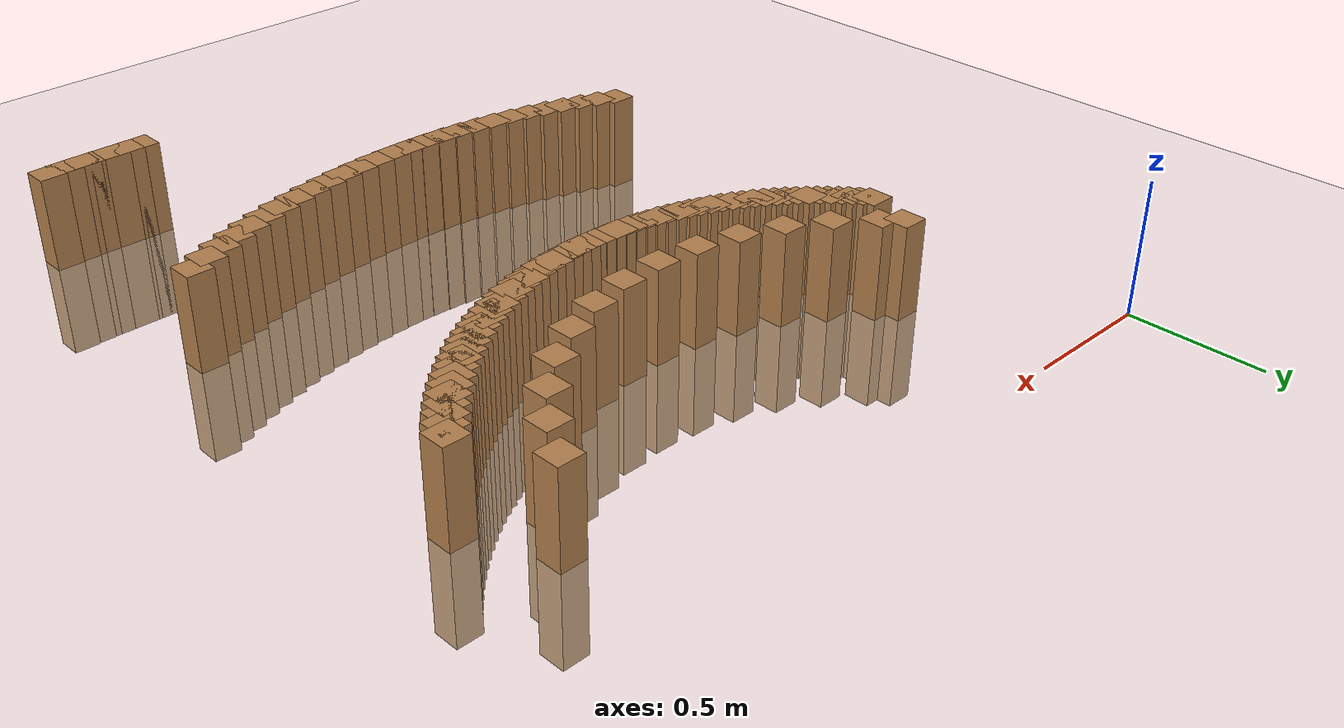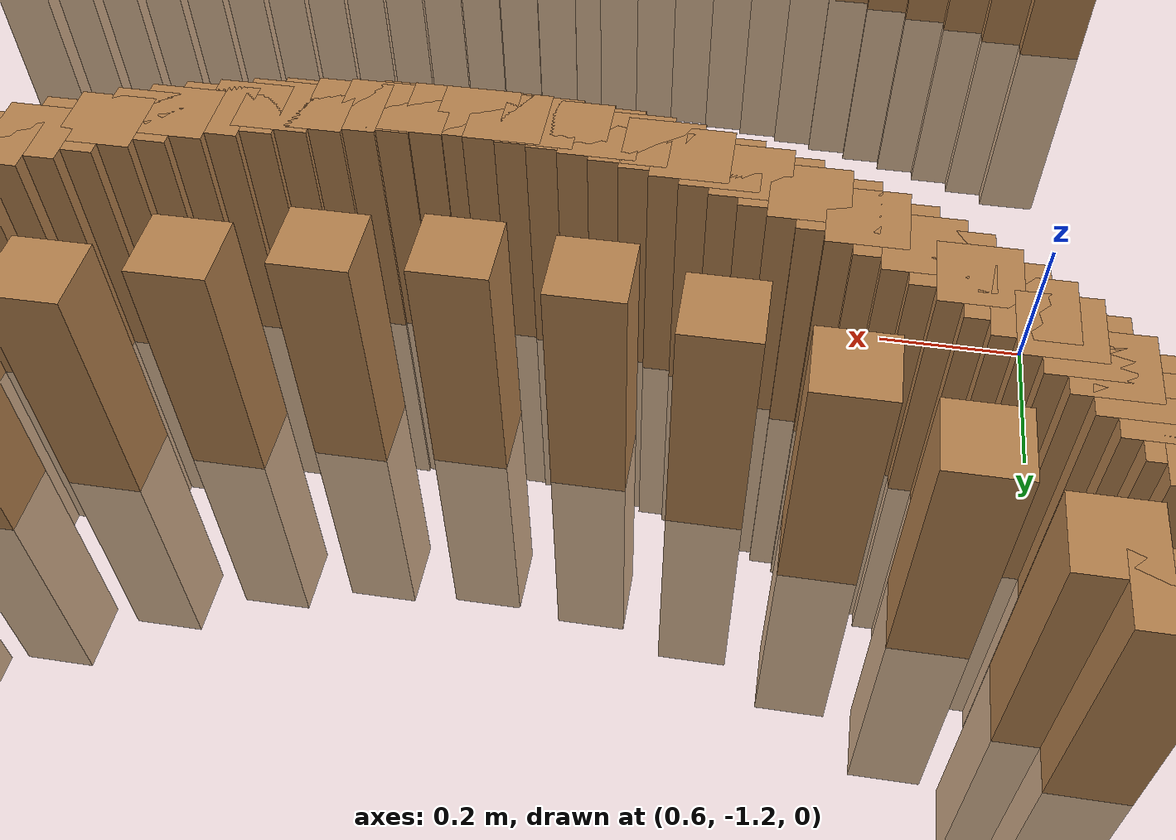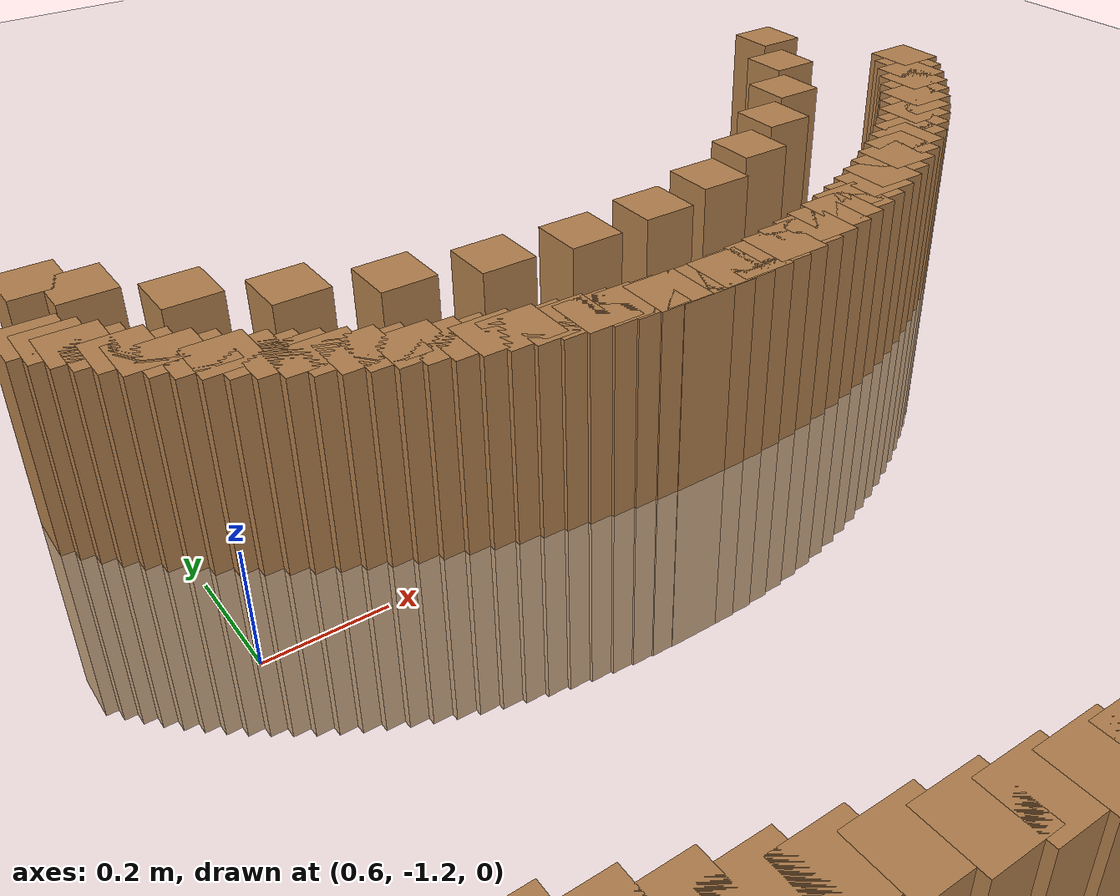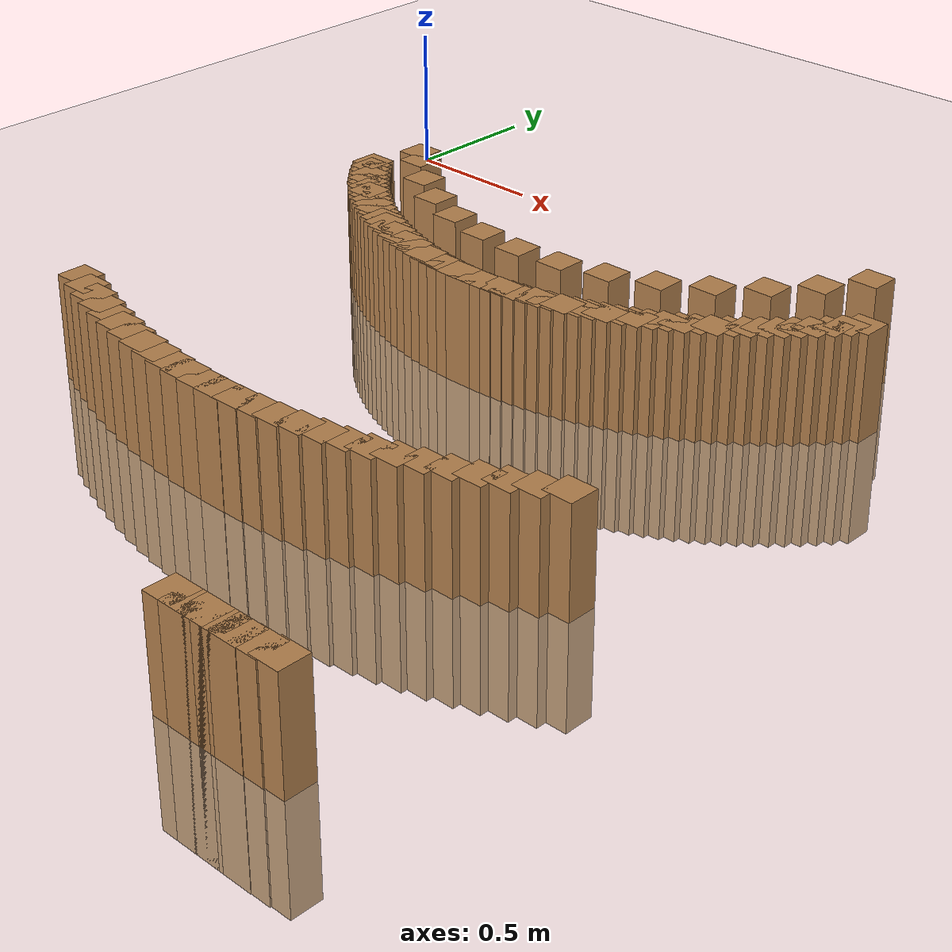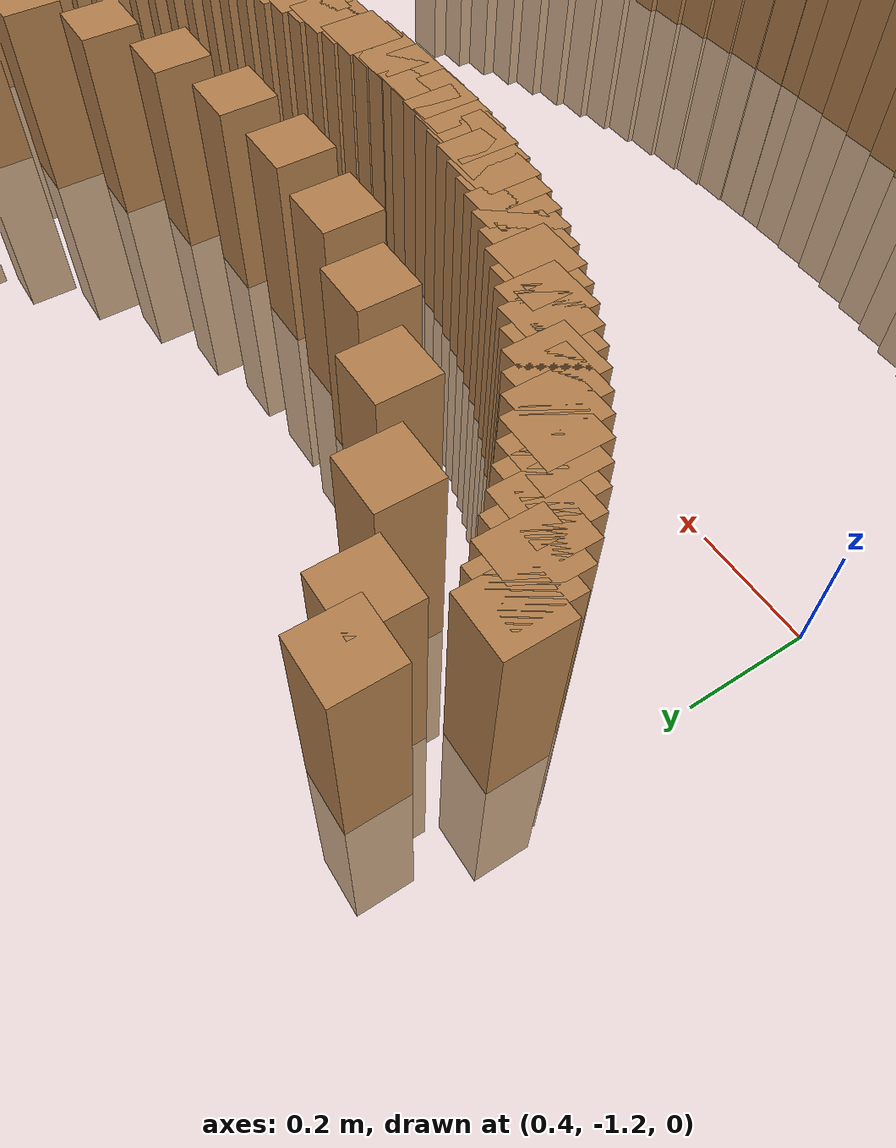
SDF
<sdf version="1.6">
 <world name="default">
  <model name="ground_plane">
   <static>1</static>
   <link name="link">
    <collision name="collision">
     <geometry><plane><normal>0 0 1</normal><size>100 100</size></plane></geometry>
     <surface><friction><ode><mu>100</mu><mu2>50</mu2></ode></friction></surface>
    </collision>
    <visual name="visual">
     <cast_shadows>0</cast_shadows>
     <geometry><plane><normal>0 0 1</normal><size>100 100</size></plane></geometry>
     <material>
      <script><uri>file://media/materials/scripts/gazebo.material</uri><name>Gazebo/Grey</name></script>
     </material>
    </visual>
   </link>
  </model>
  <model name="track">
   <link name="inner_234">
    <pose>2.426794 -1.914573 0.000000 0 -0 0</pose>
    <collision name="collision"><geometry><box><size>0.1 0.1 0.7</size></box></geometry></collision>
    <visual name="visual">
     <geometry><box><size>0.1 0.1 0.7</size></box></geometry>
     <material>
      <script><uri>file://media/materials/scripts/gazebo.material</uri><name>Gazebo/Wood</name></script>
     </material>
    </visual>
   </link>
   <link name="inner_235">
    <pose>2.356233 -1.950052 0.000000 0 -0 0</pose>
    <collision name="collision"><geometry><box><size>0.1 0.1 0.7</size></box></geometry></collision>
    <visual name="visual">
     <geometry><box><size>0.1 0.1 0.7</size></box></geometry>
     <material>
      <script><uri>file://media/materials/scripts/gazebo.material</uri><name>Gazebo/Wood</name></script>
     </material>
    </visual>
   </link>
   <link name="inner_236">
    <pose>2.284729 -1.982970 0.000000 0 -0 0</pose>
    <collision name="collision"><geometry><box><size>0.1 0.1 0.7</size></box></geometry></collision>
    <visual name="visual">
     <geometry><box><size>0.1 0.1 0.7</size></box></geometry>
     <material>
      <script><uri>file://media/materials/scripts/gazebo.material</uri><name>Gazebo/Wood</name></script>
     </material>
    </visual>
   </link>
   <link name="inner_237">
    <pose>2.212373 -2.013301 0.000000 0 -0 0</pose>
    <collision name="collision"><geometry><box><size>0.1 0.1 0.7</size></box></geometry></collision>
    <visual name="visual">
     <geometry><box><size>0.1 0.1 0.7</size></box></geometry>
     <material>
      <script><uri>file://media/materials/scripts/gazebo.material</uri><name>Gazebo/Wood</name></script>
     </material>
    </visual>
   </link>
   <link name="inner_238">
    <pose>2.139259 -2.041028 0.000000 0 -0 0</pose>
    <collision name="collision"><geometry><box><size>0.1 0.1 0.7</size></box></geometry></collision>
    <visual name="visual">
     <geometry><box><size>0.1 0.1 0.7</size></box></geometry>
     <material>
      <script><uri>file://media/materials/scripts/gazebo.material</uri><name>Gazebo/Wood</name></script>
     </material>
    </visual>
   </link>
   <link name="inner_239">
    <pose>2.065481 -2.066134 0.000000 0 -0 0</pose>
    <collision name="collision"><geometry><box><size>0.1 0.1 0.7</size></box></geometry></collision>
    <visual name="visual">
     <geometry><box><size>0.1 0.1 0.7</size></box></geometry>
     <material>
      <script><uri>file://media/materials/scripts/gazebo.material</uri><name>Gazebo/Wood</name></script>
     </material>
    </visual>
   </link>
   <link name="inner_240">
    <pose>1.991131 -2.088606 0.000000 0 -0 0</pose>
    <collision name="collision"><geometry><box><size>0.1 0.1 0.7</size></box></geometry></collision>
    <visual name="visual">
     <geometry><box><size>0.1 0.1 0.7</size></box></geometry>
     <material>
      <script><uri>file://media/materials/scripts/gazebo.material</uri><name>Gazebo/Wood</name></script>
     </material>
    </visual>
   </link>
   <link name="inner_241">
    <pose>1.916303 -2.108435 0.000000 0 -0 0</pose>
    <collision name="collision"><geometry><box><size>0.1 0.1 0.7</size></box></geometry></collision>
    <visual name="visual">
     <geometry><box><size>0.1 0.1 0.7</size></box></geometry>
     <material>
      <script><uri>file://media/materials/scripts/gazebo.material</uri><name>Gazebo/Wood</name></script>
     </material>
    </visual>
   </link>
   <link name="inner_242">
    <pose>1.841090 -2.125613 0.000000 0 -0 0</pose>
    <collision name="collision"><geometry><box><size>0.1 0.1 0.7</size></box></geometry></collision>
    <visual name="visual">
     <geometry><box><size>0.1 0.1 0.7</size></box></geometry>
     <material>
      <script><uri>file://media/materials/scripts/gazebo.material</uri><name>Gazebo/Wood</name></script>
     </material>
    </visual>
   </link>
   <link name="inner_243">
    <pose>1.765587 -2.140138 0.000000 0 -0 0</pose>
    <collision name="collision"><geometry><box><size>0.1 0.1 0.7</size></box></geometry></collision>
    <visual name="visual">
     <geometry><box><size>0.1 0.1 0.7</size></box></geometry>
     <material>
      <script><uri>file://media/materials/scripts/gazebo.material</uri><name>Gazebo/Wood</name></script>
     </material>
    </visual>
   </link>
   <link name="inner_244">
    <pose>1.689886 -2.152011 0.000000 0 -0 0</pose>
    <collision name="collision"><geometry><box><size>0.1 0.1 0.7</size></box></geometry></collision>
    <visual name="visual">
     <geometry><box><size>0.1 0.1 0.7</size></box></geometry>
     <material>
      <script><uri>file://media/materials/scripts/gazebo.material</uri><name>Gazebo/Wood</name></script>
     </material>
    </visual>
   </link>
   <link name="inner_245">
    <pose>1.614080 -2.161234 0.000000 0 -0 0</pose>
    <collision name="collision"><geometry><box><size>0.1 0.1 0.7</size></box></geometry></collision>
    <visual name="visual">
     <geometry><box><size>0.1 0.1 0.7</size></box></geometry>
     <material>
      <script><uri>file://media/materials/scripts/gazebo.material</uri><name>Gazebo/Wood</name></script>
     </material>
    </visual>
   </link>
   <link name="inner_246">
    <pose>1.538261 -2.167814 0.000000 0 -0 0</pose>
    <collision name="collision"><geometry><box><size>0.1 0.1 0.7</size></box></geometry></collision>
    <visual name="visual">
     <geometry><box><size>0.1 0.1 0.7</size></box></geometry>
     <material>
      <script><uri>file://media/materials/scripts/gazebo.material</uri><name>Gazebo/Wood</name></script>
     </material>
    </visual>
   </link>
   <link name="inner_247">
    <pose>1.462521 -2.171763 0.000000 0 -0 0</pose>
    <collision name="collision"><geometry><box><size>0.1 0.1 0.7</size></box></geometry></collision>
    <visual name="visual">
     <geometry><box><size>0.1 0.1 0.7</size></box></geometry>
     <material>
      <script><uri>file://media/materials/scripts/gazebo.material</uri><name>Gazebo/Wood</name></script>
     </material>
    </visual>
   </link>
   <link name="inner_248">
    <pose>1.386952 -2.173091 0.000000 0 -0 0</pose>
    <collision name="collision"><geometry><box><size>0.1 0.1 0.7</size></box></geometry></collision>
    <visual name="visual">
     <geometry><box><size>0.1 0.1 0.7</size></box></geometry>
     <material>
      <script><uri>file://media/materials/scripts/gazebo.material</uri><name>Gazebo/Wood</name></script>
     </material>
    </visual>
   </link>
   <link name="inner_249">
    <pose>1.311643 -2.171817 0.000000 0 -0 0</pose>
    <collision name="collision"><geometry><box><size>0.1 0.1 0.7</size></box></geometry></collision>
    <visual name="visual">
     <geometry><box><size>0.1 0.1 0.7</size></box></geometry>
     <material>
      <script><uri>file://media/materials/scripts/gazebo.material</uri><name>Gazebo/Wood</name></script>
     </material>
    </visual>
   </link>
   <link name="inner_250">
    <pose>1.236683 -2.167958 0.000000 0 -0 0</pose>
    <collision name="collision"><geometry><box><size>0.1 0.1 0.7</size></box></geometry></collision>
    <visual name="visual">
     <geometry><box><size>0.1 0.1 0.7</size></box></geometry>
     <material>
      <script><uri>file://media/materials/scripts/gazebo.material</uri><name>Gazebo/Wood</name></script>
     </material>
    </visual>
   </link>
   <link name="inner_251">
    <pose>1.162162 -2.161538 0.000000 0 -0 0</pose>
    <collision name="collision"><geometry><box><size>0.1 0.1 0.7</size></box></geometry></collision>
    <visual name="visual">
     <geometry><box><size>0.1 0.1 0.7</size></box></geometry>
     <material>
      <script><uri>file://media/materials/scripts/gazebo.material</uri><name>Gazebo/Wood</name></script>
     </material>
    </visual>
   </link>
   <link name="inner_252">
    <pose>1.088166 -2.152583 0.000000 0 -0 0</pose>
    <collision name="collision"><geometry><box><size>0.1 0.1 0.7</size></box></geometry></collision>
    <visual name="visual">
     <geometry><box><size>0.1 0.1 0.7</size></box></geometry>
     <material>
      <script><uri>file://media/materials/scripts/gazebo.material</uri><name>Gazebo/Wood</name></script>
     </material>
    </visual>
   </link>
   <link name="inner_253">
    <pose>1.014781 -2.141119 0.000000 0 -0 0</pose>
    <collision name="collision"><geometry><box><size>0.1 0.1 0.7</size></box></geometry></collision>
    <visual name="visual">
     <geometry><box><size>0.1 0.1 0.7</size></box></geometry>
     <material>
      <script><uri>file://media/materials/scripts/gazebo.material</uri><name>Gazebo/Wood</name></script>
     </material>
    </visual>
   </link>
   <link name="inner_254">
    <pose>0.942092 -2.127179 0.000000 0 -0 0</pose>
    <collision name="collision"><geometry><box><size>0.1 0.1 0.7</size></box></geometry></collision>
    <visual name="visual">
     <geometry><box><size>0.1 0.1 0.7</size></box></geometry>
     <material>
      <script><uri>file://media/materials/scripts/gazebo.material</uri><name>Gazebo/Wood</name></script>
     </material>
    </visual>
   </link>
   <link name="inner_255">
    <pose>0.870182 -2.110797 0.000000 0 -0 0</pose>
    <collision name="collision"><geometry><box><size>0.1 0.1 0.7</size></box></geometry></collision>
    <visual name="visual">
     <geometry><box><size>0.1 0.1 0.7</size></box></geometry>
     <material>
      <script><uri>file://media/materials/scripts/gazebo.material</uri><name>Gazebo/Wood</name></script>
     </material>
    </visual>
   </link>
   <link name="inner_256">
    <pose>0.799133 -2.092010 0.000000 0 -0 0</pose>
    <collision name="collision"><geometry><box><size>0.1 0.1 0.7</size></box></geometry></collision>
    <visual name="visual">
     <geometry><box><size>0.1 0.1 0.7</size></box></geometry>
     <material>
      <script><uri>file://media/materials/scripts/gazebo.material</uri><name>Gazebo/Wood</name></script>
     </material>
    </visual>
   </link>
   <link name="inner_257">
    <pose>0.729025 -2.070857 0.000000 0 -0 0</pose>
    <collision name="collision"><geometry><box><size>0.1 0.1 0.7</size></box></geometry></collision>
    <visual name="visual">
     <geometry><box><size>0.1 0.1 0.7</size></box></geometry>
     <material>
      <script><uri>file://media/materials/scripts/gazebo.material</uri><name>Gazebo/Wood</name></script>
     </material>
    </visual>
   </link>
   <link name="inner_258">
    <pose>0.659936 -2.047380 0.000000 0 -0 0</pose>
    <collision name="collision"><geometry><box><size>0.1 0.1 0.7</size></box></geometry></collision>
    <visual name="visual">
     <geometry><box><size>0.1 0.1 0.7</size></box></geometry>
     <material>
      <script><uri>file://media/materials/scripts/gazebo.material</uri><name>Gazebo/Wood</name></script>
     </material>
    </visual>
   </link>
   <link name="inner_259">
    <pose>0.591943 -2.021625 0.000000 0 -0 0</pose>
    <collision name="collision"><geometry><box><size>0.1 0.1 0.7</size></box></geometry></collision>
    <visual name="visual">
     <geometry><box><size>0.1 0.1 0.7</size></box></geometry>
     <material>
      <script><uri>file://media/materials/scripts/gazebo.material</uri><name>Gazebo/Wood</name></script>
     </material>
    </visual>
   </link>
   <link name="inner_260">
    <pose>0.525121 -1.993639 0.000000 0 -0 0</pose>
    <collision name="collision"><geometry><box><size>0.1 0.1 0.7</size></box></geometry></collision>
    <visual name="visual">
     <geometry><box><size>0.1 0.1 0.7</size></box></geometry>
     <material>
      <script><uri>file://media/materials/scripts/gazebo.material</uri><name>Gazebo/Wood</name></script>
     </material>
    </visual>
   </link>
   <link name="inner_493">
    <pose>2.068362 -2.878378 0.000000 0 -0 0</pose>
    <collision name="collision"><geometry><box><size>0.1 0.1 0.7</size></box></geometry></collision>
    <visual name="visual">
     <geometry><box><size>0.1 0.1 0.7</size></box></geometry>
     <material>
      <script><uri>file://media/materials/scripts/gazebo.material</uri><name>Gazebo/Wood</name></script>
     </material>
    </visual>
   </link>
   <link name="inner_494">
    <pose>2.125596 -2.878378 0.000000 0 -0 0</pose>
    <collision name="collision"><geometry><box><size>0.1 0.1 0.7</size></box></geometry></collision>
    <visual name="visual">
     <geometry><box><size>0.1 0.1 0.7</size></box></geometry>
     <material>
      <script><uri>file://media/materials/scripts/gazebo.material</uri><name>Gazebo/Wood</name></script>
     </material>
    </visual>
   </link>
   <link name="inner_495">
    <pose>2.182830 -2.878378 0.000000 0 -0 0</pose>
    <collision name="collision"><geometry><box><size>0.1 0.1 0.7</size></box></geometry></collision>
    <visual name="visual">
     <geometry><box><size>0.1 0.1 0.7</size></box></geometry>
     <material>
      <script><uri>file://media/materials/scripts/gazebo.material</uri><name>Gazebo/Wood</name></script>
     </material>
    </visual>
   </link>
   <link name="inner_496">
    <pose>2.240064 -2.878378 0.000000 0 -0 0</pose>
    <collision name="collision"><geometry><box><size>0.1 0.1 0.7</size></box></geometry></collision>
    <visual name="visual">
     <geometry><box><size>0.1 0.1 0.7</size></box></geometry>
     <material>
      <script><uri>file://media/materials/scripts/gazebo.material</uri><name>Gazebo/Wood</name></script>
     </material>
    </visual>
   </link>
   <link name="inner_497">
    <pose>2.297297 -2.878378 0.000000 0 -0 0</pose>
    <collision name="collision"><geometry><box><size>0.1 0.1 0.7</size></box></geometry></collision>
    <visual name="visual">
     <geometry><box><size>0.1 0.1 0.7</size></box></geometry>
     <material>
      <script><uri>file://media/materials/scripts/gazebo.material</uri><name>Gazebo/Wood</name></script>
     </material>
    </visual>
   </link>
   <link name="inner_498">
    <pose>2.364495 -2.876912 0.000000 0 -0 0</pose>
    <collision name="collision"><geometry><box><size>0.1 0.1 0.7</size></box></geometry></collision>
    <visual name="visual">
     <geometry><box><size>0.1 0.1 0.7</size></box></geometry>
     <material>
      <script><uri>file://media/materials/scripts/gazebo.material</uri><name>Gazebo/Wood</name></script>
     </material>
    </visual>
   </link>
   <link name="inner_499">
    <pose>2.431564 -2.872516 0.000000 0 -0 0</pose>
    <collision name="collision"><geometry><box><size>0.1 0.1 0.7</size></box></geometry></collision>
    <visual name="visual">
     <geometry><box><size>0.1 0.1 0.7</size></box></geometry>
     <material>
      <script><uri>file://media/materials/scripts/gazebo.material</uri><name>Gazebo/Wood</name></script>
     </material>
    </visual>
   </link>
   <link name="outer_57">
    <pose>0.546178 -0.571779 0.000000 0 -0 0</pose>
    <collision name="collision"><geometry><box><size>0.1 0.1 0.7</size></box></geometry></collision>
    <visual name="visual">
     <geometry><box><size>0.1 0.1 0.7</size></box></geometry>
     <material>
      <script><uri>file://media/materials/scripts/gazebo.material</uri><name>Gazebo/Wood</name></script>
     </material>
    </visual>
   </link>
   <link name="outer_58">
    <pose>0.602065 -0.627665 0.000000 0 -0 0</pose>
    <collision name="collision"><geometry><box><size>0.1 0.1 0.7</size></box></geometry></collision>
    <visual name="visual">
     <geometry><box><size>0.1 0.1 0.7</size></box></geometry>
     <material>
      <script><uri>file://media/materials/scripts/gazebo.material</uri><name>Gazebo/Wood</name></script>
     </material>
    </visual>
   </link>
   <link name="outer_59">
    <pose>0.726223 -0.733707 0.000000 0 -0 0</pose>
    <collision name="collision"><geometry><box><size>0.1 0.1 0.7</size></box></geometry></collision>
    <visual name="visual">
     <geometry><box><size>0.1 0.1 0.7</size></box></geometry>
     <material>
      <script><uri>file://media/materials/scripts/gazebo.material</uri><name>Gazebo/Wood</name></script>
     </material>
    </visual>
   </link>
   <link name="outer_60">
    <pose>0.865442 -0.819020 0.000000 0 -0 0</pose>
    <collision name="collision"><geometry><box><size>0.1 0.1 0.7</size></box></geometry></collision>
    <visual name="visual">
     <geometry><box><size>0.1 0.1 0.7</size></box></geometry>
     <material>
      <script><uri>file://media/materials/scripts/gazebo.material</uri><name>Gazebo/Wood</name></script>
     </material>
    </visual>
   </link>
   <link name="outer_61">
    <pose>1.016293 -0.881505 0.000000 0 -0 0</pose>
    <collision name="collision"><geometry><box><size>0.1 0.1 0.7</size></box></geometry></collision>
    <visual name="visual">
     <geometry><box><size>0.1 0.1 0.7</size></box></geometry>
     <material>
      <script><uri>file://media/materials/scripts/gazebo.material</uri><name>Gazebo/Wood</name></script>
     </material>
    </visual>
   </link>
   <link name="outer_62">
    <pose>1.175061 -0.919622 0.000000 0 -0 0</pose>
    <collision name="collision"><geometry><box><size>0.1 0.1 0.7</size></box></geometry></collision>
    <visual name="visual">
     <geometry><box><size>0.1 0.1 0.7</size></box></geometry>
     <material>
      <script><uri>file://media/materials/scripts/gazebo.material</uri><name>Gazebo/Wood</name></script>
     </material>
    </visual>
   </link>
   <link name="outer_63">
    <pose>1.337838 -0.932432 0.000000 0 -0 0</pose>
    <collision name="collision"><geometry><box><size>0.1 0.1 0.7</size></box></geometry></collision>
    <visual name="visual">
     <geometry><box><size>0.1 0.1 0.7</size></box></geometry>
     <material>
      <script><uri>file://media/materials/scripts/gazebo.material</uri><name>Gazebo/Wood</name></script>
     </material>
    </visual>
   </link>
   <link name="outer_64">
    <pose>1.500614 -0.919622 0.000000 0 -0 0</pose>
    <collision name="collision"><geometry><box><size>0.1 0.1 0.7</size></box></geometry></collision>
    <visual name="visual">
     <geometry><box><size>0.1 0.1 0.7</size></box></geometry>
     <material>
      <script><uri>file://media/materials/scripts/gazebo.material</uri><name>Gazebo/Wood</name></script>
     </material>
    </visual>
   </link>
   <link name="outer_65">
    <pose>1.659383 -0.881505 0.000000 0 -0 0</pose>
    <collision name="collision"><geometry><box><size>0.1 0.1 0.7</size></box></geometry></collision>
    <visual name="visual">
     <geometry><box><size>0.1 0.1 0.7</size></box></geometry>
     <material>
      <script><uri>file://media/materials/scripts/gazebo.material</uri><name>Gazebo/Wood</name></script>
     </material>
    </visual>
   </link>
   <link name="outer_66">
    <pose>1.810233 -0.819020 0.000000 0 -0 0</pose>
    <collision name="collision"><geometry><box><size>0.1 0.1 0.7</size></box></geometry></collision>
    <visual name="visual">
     <geometry><box><size>0.1 0.1 0.7</size></box></geometry>
     <material>
      <script><uri>file://media/materials/scripts/gazebo.material</uri><name>Gazebo/Wood</name></script>
     </material>
    </visual>
   </link>
   <link name="outer_67">
    <pose>1.949452 -0.733707 0.000000 0 -0 0</pose>
    <collision name="collision"><geometry><box><size>0.1 0.1 0.7</size></box></geometry></collision>
    <visual name="visual">
     <geometry><box><size>0.1 0.1 0.7</size></box></geometry>
     <material>
      <script><uri>file://media/materials/scripts/gazebo.material</uri><name>Gazebo/Wood</name></script>
     </material>
    </visual>
   </link>
   <link name="outer_68">
    <pose>2.073611 -0.627665 0.000000 0 -0 0</pose>
    <collision name="collision"><geometry><box><size>0.1 0.1 0.7</size></box></geometry></collision>
    <visual name="visual">
     <geometry><box><size>0.1 0.1 0.7</size></box></geometry>
     <material>
      <script><uri>file://media/materials/scripts/gazebo.material</uri><name>Gazebo/Wood</name></script>
     </material>
    </visual>
   </link>
   <link name="outer_69">
    <pose>2.179653 -0.503506 0.000000 0 -0 0</pose>
    <collision name="collision"><geometry><box><size>0.1 0.1 0.7</size></box></geometry></collision>
    <visual name="visual">
     <geometry><box><size>0.1 0.1 0.7</size></box></geometry>
     <material>
      <script><uri>file://media/materials/scripts/gazebo.material</uri><name>Gazebo/Wood</name></script>
     </material>
    </visual>
   </link>
   <link name="outer_70">
    <pose>2.264966 -0.364287 0.000000 0 -0 0</pose>
    <collision name="collision"><geometry><box><size>0.1 0.1 0.7</size></box></geometry></collision>
    <visual name="visual">
     <geometry><box><size>0.1 0.1 0.7</size></box></geometry>
     <material>
      <script><uri>file://media/materials/scripts/gazebo.material</uri><name>Gazebo/Wood</name></script>
     </material>
    </visual>
   </link>
   <link name="outer_219">
    <pose>2.424030 -0.640334 0.000000 0 -0 0</pose>
    <collision name="collision"><geometry><box><size>0.1 0.1 0.7</size></box></geometry></collision>
    <visual name="visual">
     <geometry><box><size>0.1 0.1 0.7</size></box></geometry>
     <material>
      <script><uri>file://media/materials/scripts/gazebo.material</uri><name>Gazebo/Wood</name></script>
     </material>
    </visual>
   </link>
   <link name="outer_220">
    <pose>2.394266 -0.679264 0.000000 0 -0 0</pose>
    <collision name="collision"><geometry><box><size>0.1 0.1 0.7</size></box></geometry></collision>
    <visual name="visual">
     <geometry><box><size>0.1 0.1 0.7</size></box></geometry>
     <material>
      <script><uri>file://media/materials/scripts/gazebo.material</uri><name>Gazebo/Wood</name></script>
     </material>
    </visual>
   </link>
   <link name="outer_221">
    <pose>2.363323 -0.716929 0.000000 0 -0 0</pose>
    <collision name="collision"><geometry><box><size>0.1 0.1 0.7</size></box></geometry></collision>
    <visual name="visual">
     <geometry><box><size>0.1 0.1 0.7</size></box></geometry>
     <material>
      <script><uri>file://media/materials/scripts/gazebo.material</uri><name>Gazebo/Wood</name></script>
     </material>
    </visual>
   </link>
   <link name="outer_222">
    <pose>2.331253 -0.753293 0.000000 0 -0 0</pose>
    <collision name="collision"><geometry><box><size>0.1 0.1 0.7</size></box></geometry></collision>
    <visual name="visual">
     <geometry><box><size>0.1 0.1 0.7</size></box></geometry>
     <material>
      <script><uri>file://media/materials/scripts/gazebo.material</uri><name>Gazebo/Wood</name></script>
     </material>
    </visual>
   </link>
   <link name="outer_223">
    <pose>2.298107 -0.788324 0.000000 0 -0 0</pose>
    <collision name="collision"><geometry><box><size>0.1 0.1 0.7</size></box></geometry></collision>
    <visual name="visual">
     <geometry><box><size>0.1 0.1 0.7</size></box></geometry>
     <material>
      <script><uri>file://media/materials/scripts/gazebo.material</uri><name>Gazebo/Wood</name></script>
     </material>
    </visual>
   </link>
   <link name="outer_224">
    <pose>2.263940 -0.821991 0.000000 0 -0 0</pose>
    <collision name="collision"><geometry><box><size>0.1 0.1 0.7</size></box></geometry></collision>
    <visual name="visual">
     <geometry><box><size>0.1 0.1 0.7</size></box></geometry>
     <material>
      <script><uri>file://media/materials/scripts/gazebo.material</uri><name>Gazebo/Wood</name></script>
     </material>
    </visual>
   </link>
   <link name="outer_225">
    <pose>2.228806 -0.854265 0.000000 0 -0 0</pose>
    <collision name="collision"><geometry><box><size>0.1 0.1 0.7</size></box></geometry></collision>
    <visual name="visual">
     <geometry><box><size>0.1 0.1 0.7</size></box></geometry>
     <material>
      <script><uri>file://media/materials/scripts/gazebo.material</uri><name>Gazebo/Wood</name></script>
     </material>
    </visual>
   </link>
   <link name="outer_226">
    <pose>2.192759 -0.885120 0.000000 0 -0 0</pose>
    <collision name="collision"><geometry><box><size>0.1 0.1 0.7</size></box></geometry></collision>
    <visual name="visual">
     <geometry><box><size>0.1 0.1 0.7</size></box></geometry>
     <material>
      <script><uri>file://media/materials/scripts/gazebo.material</uri><name>Gazebo/Wood</name></script>
     </material>
    </visual>
   </link>
   <link name="outer_227">
    <pose>2.155856 -0.914532 0.000000 0 -0 0</pose>
    <collision name="collision"><geometry><box><size>0.1 0.1 0.7</size></box></geometry></collision>
    <visual name="visual">
     <geometry><box><size>0.1 0.1 0.7</size></box></geometry>
     <material>
      <script><uri>file://media/materials/scripts/gazebo.material</uri><name>Gazebo/Wood</name></script>
     </material>
    </visual>
   </link>
   <link name="outer_228">
    <pose>2.118153 -0.942477 0.000000 0 -0 0</pose>
    <collision name="collision"><geometry><box><size>0.1 0.1 0.7</size></box></geometry></collision>
    <visual name="visual">
     <geometry><box><size>0.1 0.1 0.7</size></box></geometry>
     <material>
      <script><uri>file://media/materials/scripts/gazebo.material</uri><name>Gazebo/Wood</name></script>
     </material>
    </visual>
   </link>
   <link name="outer_229">
    <pose>2.079707 -0.968937 0.000000 0 -0 0</pose>
    <collision name="collision"><geometry><box><size>0.1 0.1 0.7</size></box></geometry></collision>
    <visual name="visual">
     <geometry><box><size>0.1 0.1 0.7</size></box></geometry>
     <material>
      <script><uri>file://media/materials/scripts/gazebo.material</uri><name>Gazebo/Wood</name></script>
     </material>
    </visual>
   </link>
   <link name="outer_230">
    <pose>2.040574 -0.993892 0.000000 0 -0 0</pose>
    <collision name="collision"><geometry><box><size>0.1 0.1 0.7</size></box></geometry></collision>
    <visual name="visual">
     <geometry><box><size>0.1 0.1 0.7</size></box></geometry>
     <material>
      <script><uri>file://media/materials/scripts/gazebo.material</uri><name>Gazebo/Wood</name></script>
     </material>
    </visual>
   </link>
   <link name="outer_231">
    <pose>2.000814 -1.017328 0.000000 0 -0 0</pose>
    <collision name="collision"><geometry><box><size>0.1 0.1 0.7</size></box></geometry></collision>
    <visual name="visual">
     <geometry><box><size>0.1 0.1 0.7</size></box></geometry>
     <material>
      <script><uri>file://media/materials/scripts/gazebo.material</uri><name>Gazebo/Wood</name></script>
     </material>
    </visual>
   </link>
   <link name="outer_232">
    <pose>1.960483 -1.039230 0.000000 0 -0 0</pose>
    <collision name="collision"><geometry><box><size>0.1 0.1 0.7</size></box></geometry></collision>
    <visual name="visual">
     <geometry><box><size>0.1 0.1 0.7</size></box></geometry>
     <material>
      <script><uri>file://media/materials/scripts/gazebo.material</uri><name>Gazebo/Wood</name></script>
     </material>
    </visual>
   </link>
   <link name="outer_233">
    <pose>1.919640 -1.059587 0.000000 0 -0 0</pose>
    <collision name="collision"><geometry><box><size>0.1 0.1 0.7</size></box></geometry></collision>
    <visual name="visual">
     <geometry><box><size>0.1 0.1 0.7</size></box></geometry>
     <material>
      <script><uri>file://media/materials/scripts/gazebo.material</uri><name>Gazebo/Wood</name></script>
     </material>
    </visual>
   </link>
   <link name="outer_234">
    <pose>1.878342 -1.078391 0.000000 0 -0 0</pose>
    <collision name="collision"><geometry><box><size>0.1 0.1 0.7</size></box></geometry></collision>
    <visual name="visual">
     <geometry><box><size>0.1 0.1 0.7</size></box></geometry>
     <material>
      <script><uri>file://media/materials/scripts/gazebo.material</uri><name>Gazebo/Wood</name></script>
     </material>
    </visual>
   </link>
   <link name="outer_235">
    <pose>1.836649 -1.095633 0.000000 0 -0 0</pose>
    <collision name="collision"><geometry><box><size>0.1 0.1 0.7</size></box></geometry></collision>
    <visual name="visual">
     <geometry><box><size>0.1 0.1 0.7</size></box></geometry>
     <material>
      <script><uri>file://media/materials/scripts/gazebo.material</uri><name>Gazebo/Wood</name></script>
     </material>
    </visual>
   </link>
   <link name="outer_236">
    <pose>1.794618 -1.111309 0.000000 0 -0 0</pose>
    <collision name="collision"><geometry><box><size>0.1 0.1 0.7</size></box></geometry></collision>
    <visual name="visual">
     <geometry><box><size>0.1 0.1 0.7</size></box></geometry>
     <material>
      <script><uri>file://media/materials/scripts/gazebo.material</uri><name>Gazebo/Wood</name></script>
     </material>
    </visual>
   </link>
   <link name="outer_237">
    <pose>1.752308 -1.125416 0.000000 0 -0 0</pose>
    <collision name="collision"><geometry><box><size>0.1 0.1 0.7</size></box></geometry></collision>
    <visual name="visual">
     <geometry><box><size>0.1 0.1 0.7</size></box></geometry>
     <material>
      <script><uri>file://media/materials/scripts/gazebo.material</uri><name>Gazebo/Wood</name></script>
     </material>
    </visual>
   </link>
   <link name="outer_238">
    <pose>1.709776 -1.137954 0.000000 0 -0 0</pose>
    <collision name="collision"><geometry><box><size>0.1 0.1 0.7</size></box></geometry></collision>
    <visual name="visual">
     <geometry><box><size>0.1 0.1 0.7</size></box></geometry>
     <material>
      <script><uri>file://media/materials/scripts/gazebo.material</uri><name>Gazebo/Wood</name></script>
     </material>
    </visual>
   </link>
   <link name="outer_239">
    <pose>1.667080 -1.148923 0.000000 0 -0 0</pose>
    <collision name="collision"><geometry><box><size>0.1 0.1 0.7</size></box></geometry></collision>
    <visual name="visual">
     <geometry><box><size>0.1 0.1 0.7</size></box></geometry>
     <material>
      <script><uri>file://media/materials/scripts/gazebo.material</uri><name>Gazebo/Wood</name></script>
     </material>
    </visual>
   </link>
   <link name="outer_240">
    <pose>1.624276 -1.158328 0.000000 0 -0 0</pose>
    <collision name="collision"><geometry><box><size>0.1 0.1 0.7</size></box></geometry></collision>
    <visual name="visual">
     <geometry><box><size>0.1 0.1 0.7</size></box></geometry>
     <material>
      <script><uri>file://media/materials/scripts/gazebo.material</uri><name>Gazebo/Wood</name></script>
     </material>
    </visual>
   </link>
   <link name="outer_241">
    <pose>1.581423 -1.166174 0.000000 0 -0 0</pose>
    <collision name="collision"><geometry><box><size>0.1 0.1 0.7</size></box></geometry></collision>
    <visual name="visual">
     <geometry><box><size>0.1 0.1 0.7</size></box></geometry>
     <material>
      <script><uri>file://media/materials/scripts/gazebo.material</uri><name>Gazebo/Wood</name></script>
     </material>
    </visual>
   </link>
   <link name="outer_242">
    <pose>1.538576 -1.172468 0.000000 0 -0 0</pose>
    <collision name="collision"><geometry><box><size>0.1 0.1 0.7</size></box></geometry></collision>
    <visual name="visual">
     <geometry><box><size>0.1 0.1 0.7</size></box></geometry>
     <material>
      <script><uri>file://media/materials/scripts/gazebo.material</uri><name>Gazebo/Wood</name></script>
     </material>
    </visual>
   </link>
   <link name="outer_243">
    <pose>1.495790 -1.177221 0.000000 0 -0 0</pose>
    <collision name="collision"><geometry><box><size>0.1 0.1 0.7</size></box></geometry></collision>
    <visual name="visual">
     <geometry><box><size>0.1 0.1 0.7</size></box></geometry>
     <material>
      <script><uri>file://media/materials/scripts/gazebo.material</uri><name>Gazebo/Wood</name></script>
     </material>
    </visual>
   </link>
   <link name="outer_244">
    <pose>1.453122 -1.180443 0.000000 0 -0 0</pose>
    <collision name="collision"><geometry><box><size>0.1 0.1 0.7</size></box></geometry></collision>
    <visual name="visual">
     <geometry><box><size>0.1 0.1 0.7</size></box></geometry>
     <material>
      <script><uri>file://media/materials/scripts/gazebo.material</uri><name>Gazebo/Wood</name></script>
     </material>
    </visual>
   </link>
   <link name="outer_245">
    <pose>1.410624 -1.182150 0.000000 0 -0 0</pose>
    <collision name="collision"><geometry><box><size>0.1 0.1 0.7</size></box></geometry></collision>
    <visual name="visual">
     <geometry><box><size>0.1 0.1 0.7</size></box></geometry>
     <material>
      <script><uri>file://media/materials/scripts/gazebo.material</uri><name>Gazebo/Wood</name></script>
     </material>
    </visual>
   </link>
   <link name="outer_246">
    <pose>1.368351 -1.182355 0.000000 0 -0 0</pose>
    <collision name="collision"><geometry><box><size>0.1 0.1 0.7</size></box></geometry></collision>
    <visual name="visual">
     <geometry><box><size>0.1 0.1 0.7</size></box></geometry>
     <material>
      <script><uri>file://media/materials/scripts/gazebo.material</uri><name>Gazebo/Wood</name></script>
     </material>
    </visual>
   </link>
   <link name="outer_247">
    <pose>1.326355 -1.181077 0.000000 0 -0 0</pose>
    <collision name="collision"><geometry><box><size>0.1 0.1 0.7</size></box></geometry></collision>
    <visual name="visual">
     <geometry><box><size>0.1 0.1 0.7</size></box></geometry>
     <material>
      <script><uri>file://media/materials/scripts/gazebo.material</uri><name>Gazebo/Wood</name></script>
     </material>
    </visual>
   </link>
   <link name="outer_248">
    <pose>1.284688 -1.178334 0.000000 0 -0 0</pose>
    <collision name="collision"><geometry><box><size>0.1 0.1 0.7</size></box></geometry></collision>
    <visual name="visual">
     <geometry><box><size>0.1 0.1 0.7</size></box></geometry>
     <material>
      <script><uri>file://media/materials/scripts/gazebo.material</uri><name>Gazebo/Wood</name></script>
     </material>
    </visual>
   </link>
   <link name="outer_249">
    <pose>1.243400 -1.174148 0.000000 0 -0 0</pose>
    <collision name="collision"><geometry><box><size>0.1 0.1 0.7</size></box></geometry></collision>
    <visual name="visual">
     <geometry><box><size>0.1 0.1 0.7</size></box></geometry>
     <material>
      <script><uri>file://media/materials/scripts/gazebo.material</uri><name>Gazebo/Wood</name></script>
     </material>
    </visual>
   </link>
   <link name="outer_250">
    <pose>1.202542 -1.168541 0.000000 0 -0 0</pose>
    <collision name="collision"><geometry><box><size>0.1 0.1 0.7</size></box></geometry></collision>
    <visual name="visual">
     <geometry><box><size>0.1 0.1 0.7</size></box></geometry>
     <material>
      <script><uri>file://media/materials/scripts/gazebo.material</uri><name>Gazebo/Wood</name></script>
     </material>
    </visual>
   </link>
   <link name="outer_251">
    <pose>1.162162 -1.161538 0.000000 0 -0 0</pose>
    <collision name="collision"><geometry><box><size>0.1 0.1 0.7</size></box></geometry></collision>
    <visual name="visual">
     <geometry><box><size>0.1 0.1 0.7</size></box></geometry>
     <material>
      <script><uri>file://media/materials/scripts/gazebo.material</uri><name>Gazebo/Wood</name></script>
     </material>
    </visual>
   </link>
   <link name="outer_252">
    <pose>1.122307 -1.153166 0.000000 0 -0 0</pose>
    <collision name="collision"><geometry><box><size>0.1 0.1 0.7</size></box></geometry></collision>
    <visual name="visual">
     <geometry><box><size>0.1 0.1 0.7</size></box></geometry>
     <material>
      <script><uri>file://media/materials/scripts/gazebo.material</uri><name>Gazebo/Wood</name></script>
     </material>
    </visual>
   </link>
   <link name="outer_253">
    <pose>1.083024 -1.143450 0.000000 0 -0 0</pose>
    <collision name="collision"><geometry><box><size>0.1 0.1 0.7</size></box></geometry></collision>
    <visual name="visual">
     <geometry><box><size>0.1 0.1 0.7</size></box></geometry>
     <material>
      <script><uri>file://media/materials/scripts/gazebo.material</uri><name>Gazebo/Wood</name></script>
     </material>
    </visual>
   </link>
   <link name="outer_254">
    <pose>1.044356 -1.132422 0.000000 0 -0 0</pose>
    <collision name="collision"><geometry><box><size>0.1 0.1 0.7</size></box></geometry></collision>
    <visual name="visual">
     <geometry><box><size>0.1 0.1 0.7</size></box></geometry>
     <material>
      <script><uri>file://media/materials/scripts/gazebo.material</uri><name>Gazebo/Wood</name></script>
     </material>
    </visual>
   </link>
   <link name="outer_255">
    <pose>1.006349 -1.120111 0.000000 0 -0 0</pose>
    <collision name="collision"><geometry><box><size>0.1 0.1 0.7</size></box></geometry></collision>
    <visual name="visual">
     <geometry><box><size>0.1 0.1 0.7</size></box></geometry>
     <material>
      <script><uri>file://media/materials/scripts/gazebo.material</uri><name>Gazebo/Wood</name></script>
     </material>
    </visual>
   </link>
   <link name="outer_256">
    <pose>0.969044 -1.106550 0.000000 0 -0 0</pose>
    <collision name="collision"><geometry><box><size>0.1 0.1 0.7</size></box></geometry></collision>
    <visual name="visual">
     <geometry><box><size>0.1 0.1 0.7</size></box></geometry>
     <material>
      <script><uri>file://media/materials/scripts/gazebo.material</uri><name>Gazebo/Wood</name></script>
     </material>
    </visual>
   </link>
   <link name="outer_257">
    <pose>0.932481 -1.091773 0.000000 0 -0 0</pose>
    <collision name="collision"><geometry><box><size>0.1 0.1 0.7</size></box></geometry></collision>
    <visual name="visual">
     <geometry><box><size>0.1 0.1 0.7</size></box></geometry>
     <material>
      <script><uri>file://media/materials/scripts/gazebo.material</uri><name>Gazebo/Wood</name></script>
     </material>
    </visual>
   </link>
   <link name="outer_258">
    <pose>0.896701 -1.075813 0.000000 0 -0 0</pose>
    <collision name="collision"><geometry><box><size>0.1 0.1 0.7</size></box></geometry></collision>
    <visual name="visual">
     <geometry><box><size>0.1 0.1 0.7</size></box></geometry>
     <material>
      <script><uri>file://media/materials/scripts/gazebo.material</uri><name>Gazebo/Wood</name></script>
     </material>
    </visual>
   </link>
   <link name="outer_259">
    <pose>0.861740 -1.058708 0.000000 0 -0 0</pose>
    <collision name="collision"><geometry><box><size>0.1 0.1 0.7</size></box></geometry></collision>
    <visual name="visual">
     <geometry><box><size>0.1 0.1 0.7</size></box></geometry>
     <material>
      <script><uri>file://media/materials/scripts/gazebo.material</uri><name>Gazebo/Wood</name></script>
     </material>
    </visual>
   </link>
   <link name="outer_260">
    <pose>0.827635 -1.040494 0.000000 0 -0 0</pose>
    <collision name="collision"><geometry><box><size>0.1 0.1 0.7</size></box></geometry></collision>
    <visual name="visual">
     <geometry><box><size>0.1 0.1 0.7</size></box></geometry>
     <material>
      <script><uri>file://media/materials/scripts/gazebo.material</uri><name>Gazebo/Wood</name></script>
     </material>
    </visual>
   </link>
   <link name="outer_261">
    <pose>0.794421 -1.021210 0.000000 0 -0 0</pose>
    <collision name="collision"><geometry><box><size>0.1 0.1 0.7</size></box></geometry></collision>
    <visual name="visual">
     <geometry><box><size>0.1 0.1 0.7</size></box></geometry>
     <material>
      <script><uri>file://media/materials/scripts/gazebo.material</uri><name>Gazebo/Wood</name></script>
     </material>
    </visual>
   </link>
   <link name="outer_262">
    <pose>0.762131 -1.000896 0.000000 0 -0 0</pose>
    <collision name="collision"><geometry><box><size>0.1 0.1 0.7</size></box></geometry></collision>
    <visual name="visual">
     <geometry><box><size>0.1 0.1 0.7</size></box></geometry>
     <material>
      <script><uri>file://media/materials/scripts/gazebo.material</uri><name>Gazebo/Wood</name></script>
     </material>
    </visual>
   </link>
   <link name="outer_263">
    <pose>0.730796 -0.979592 0.000000 0 -0 0</pose>
    <collision name="collision"><geometry><box><size>0.1 0.1 0.7</size></box></geometry></collision>
    <visual name="visual">
     <geometry><box><size>0.1 0.1 0.7</size></box></geometry>
     <material>
      <script><uri>file://media/materials/scripts/gazebo.material</uri><name>Gazebo/Wood</name></script>
     </material>
    </visual>
   </link>
   <link name="outer_264">
    <pose>0.700445 -0.957339 0.000000 0 -0 0</pose>
    <collision name="collision"><geometry><box><size>0.1 0.1 0.7</size></box></geometry></collision>
    <visual name="visual">
     <geometry><box><size>0.1 0.1 0.7</size></box></geometry>
     <material>
      <script><uri>file://media/materials/scripts/gazebo.material</uri><name>Gazebo/Wood</name></script>
     </material>
    </visual>
   </link>
   <link name="outer_265">
    <pose>0.671107 -0.934179 0.000000 0 -0 0</pose>
    <collision name="collision"><geometry><box><size>0.1 0.1 0.7</size></box></geometry></collision>
    <visual name="visual">
     <geometry><box><size>0.1 0.1 0.7</size></box></geometry>
     <material>
      <script><uri>file://media/materials/scripts/gazebo.material</uri><name>Gazebo/Wood</name></script>
     </material>
    </visual>
   </link>
   <link name="outer_266">
    <pose>0.642808 -0.910157 0.000000 0 -0 0</pose>
    <collision name="collision"><geometry><box><size>0.1 0.1 0.7</size></box></geometry></collision>
    <visual name="visual">
     <geometry><box><size>0.1 0.1 0.7</size></box></geometry>
     <material>
      <script><uri>file://media/materials/scripts/gazebo.material</uri><name>Gazebo/Wood</name></script>
     </material>
    </visual>
   </link>
   <link name="outer_267">
    <pose>0.615573 -0.885314 0.000000 0 -0 0</pose>
    <collision name="collision"><geometry><box><size>0.1 0.1 0.7</size></box></geometry></collision>
    <visual name="visual">
     <geometry><box><size>0.1 0.1 0.7</size></box></geometry>
     <material>
      <script><uri>file://media/materials/scripts/gazebo.material</uri><name>Gazebo/Wood</name></script>
     </material>
    </visual>
   </link>
   <link name="outer_268">
    <pose>0.589423 -0.859697 0.000000 0 -0 0</pose>
    <collision name="collision"><geometry><box><size>0.1 0.1 0.7</size></box></geometry></collision>
    <visual name="visual">
     <geometry><box><size>0.1 0.1 0.7</size></box></geometry>
     <material>
      <script><uri>file://media/materials/scripts/gazebo.material</uri><name>Gazebo/Wood</name></script>
     </material>
    </visual>
   </link>
   <link name="outer_269">
    <pose>0.564381 -0.833350 0.000000 0 -0 0</pose>
    <collision name="collision"><geometry><box><size>0.1 0.1 0.7</size></box></geometry></collision>
    <visual name="visual">
     <geometry><box><size>0.1 0.1 0.7</size></box></geometry>
     <material>
      <script><uri>file://media/materials/scripts/gazebo.material</uri><name>Gazebo/Wood</name></script>
     </material>
    </visual>
   </link>
   <link name="outer_270">
    <pose>0.540464 -0.806318 0.000000 0 -0 0</pose>
    <collision name="collision"><geometry><box><size>0.1 0.1 0.7</size></box></geometry></collision>
    <visual name="visual">
     <geometry><box><size>0.1 0.1 0.7</size></box></geometry>
     <material>
      <script><uri>file://media/materials/scripts/gazebo.material</uri><name>Gazebo/Wood</name></script>
     </material>
    </visual>
   </link>
   <link name="outer_271">
    <pose>0.517691 -0.778647 0.000000 0 -0 0</pose>
    <collision name="collision"><geometry><box><size>0.1 0.1 0.7</size></box></geometry></collision>
    <visual name="visual">
     <geometry><box><size>0.1 0.1 0.7</size></box></geometry>
     <material>
      <script><uri>file://media/materials/scripts/gazebo.material</uri><name>Gazebo/Wood</name></script>
     </material>
    </visual>
   </link>
   <link name="outer_272">
    <pose>0.496077 -0.750385 0.000000 0 -0 0</pose>
    <collision name="collision"><geometry><box><size>0.1 0.1 0.7</size></box></geometry></collision>
    <visual name="visual">
     <geometry><box><size>0.1 0.1 0.7</size></box></geometry>
     <material>
      <script><uri>file://media/materials/scripts/gazebo.material</uri><name>Gazebo/Wood</name></script>
     </material>
    </visual>
   </link>
   <static>1</static>
  </model>
 </world>
</sdf>
